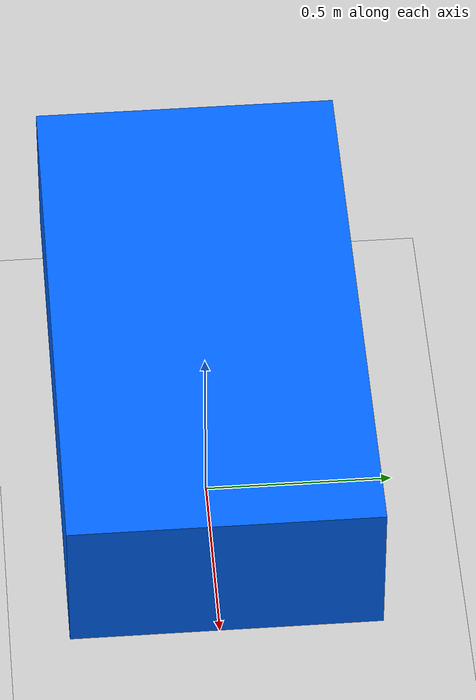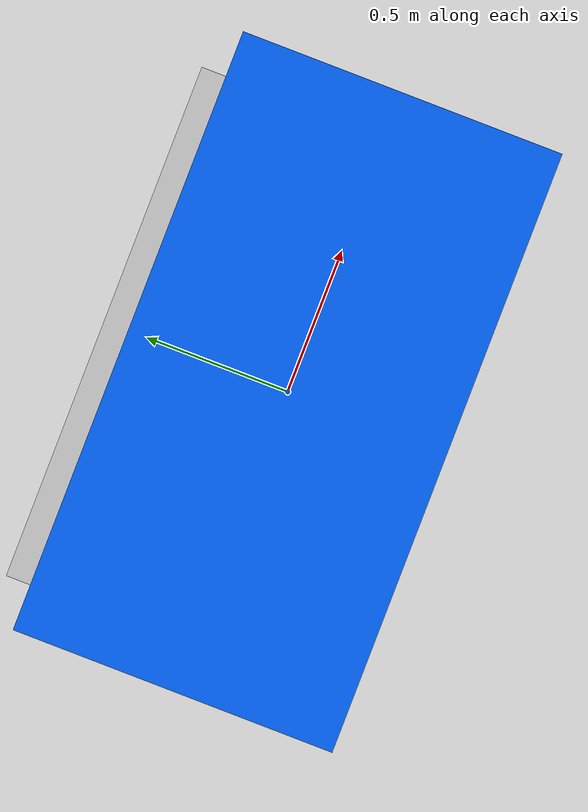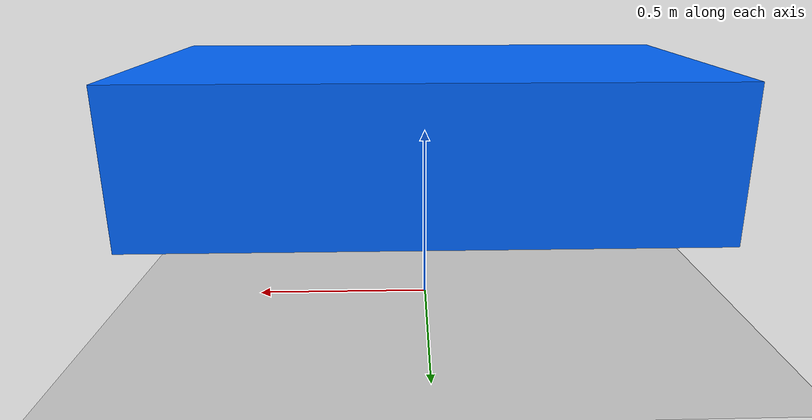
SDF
<?xml version="1.0" ?>
<sdf version="1.9">
  <world name="lidar_demo">

    <physics name="1ms" type="ignored">
      <max_step_size>0.001</max_step_size>
      <real_time_factor>1.0</real_time_factor>
    </physics>
    <plugin
      filename="gz-sim-physics-system"
      name="gz::sim::systems::Physics">
    </plugin>
    <plugin
      filename="gz-sim-sensors-system"
      name="gz::sim::systems::Sensors">
      <render_engine>ogre2</render_engine>
    </plugin>
    <plugin
      filename="gz-sim-scene-broadcaster-system"
      name="gz::sim::systems::SceneBroadcaster">
    </plugin>

    <include>
      <uri>https://fuel.gazebosim.org/1.0/OpenRobotics/models/Sun</uri>
    </include>
    <include>
      <uri>https://fuel.gazebosim.org/1.0/OpenRobotics/models/Ground Plane</uri>
    </include>

    <model name="vehicle_blue"> <pose>0 0 0.5 0 0 0</pose> <static>false</static>

      <link name="chassis">
        <collision name="collision">
          <geometry>
            <box>
              <size>1.5 0.8 0.4</size>
            </box>
          </geometry>
        </collision>

        <visual name="visual">
          <geometry>
            <box>
              <size>1.5 0.8 0.4</size>
            </box>
          </geometry>
          <material>
            <ambient>0 0.4 1 1</ambient> </material>
        </visual>

        <sensor name="gpu_lidar" type="gpu_lidar">
          <pose>0 0 0.3 0 0 0</pose>
          <topic>lidar</topic> <always_on>true</always_on>
          <update_rate>10</update_rate>
          <visualize>true</visualize>
          <ray>
            <scan>
              <horizontal>
                <samples>640</samples>
                <resolution>1</resolution>
                <min_angle>-3.14</min_angle>
                <max_angle>3.14</max_angle>
              </horizontal>
              <vertical>
                <samples>16</samples> <resolution>1</resolution>
                <min_angle>-0.26</min_angle>
                <max_angle>0.26</max_angle>
              </vertical>
            </scan>
            <range>
              <min>0.2</min>
              <max>20.0</max>
            </range>
          </ray>
        </sensor>
      </link>

      <plugin
        filename="gz-sim-diff-drive-system"
        name="gz::sim::systems::DiffDrive">
        <left_joint>left_wheel_joint</left_joint> <right_joint>right_wheel_joint</right_joint>
        <wheel_separation>1.2</wheel_separation>
        <wheel_radius>0.4</wheel_radius>
        <topic>cmd_vel</topic> </plugin>

    </model>
  </world>
</sdf>
